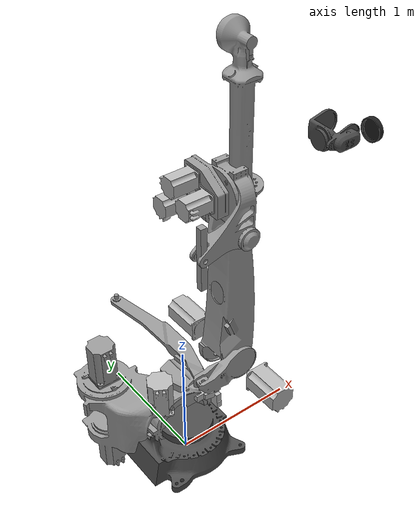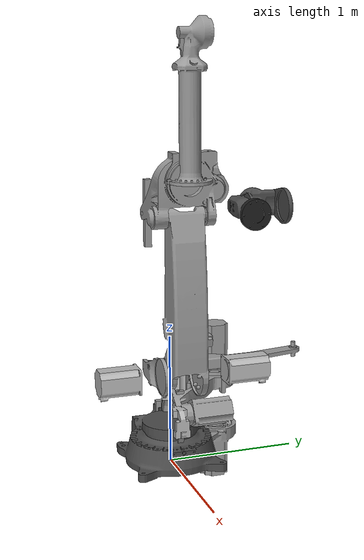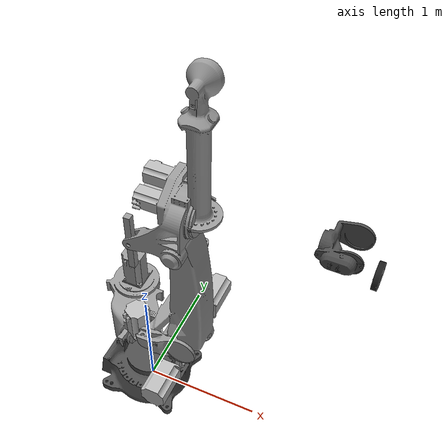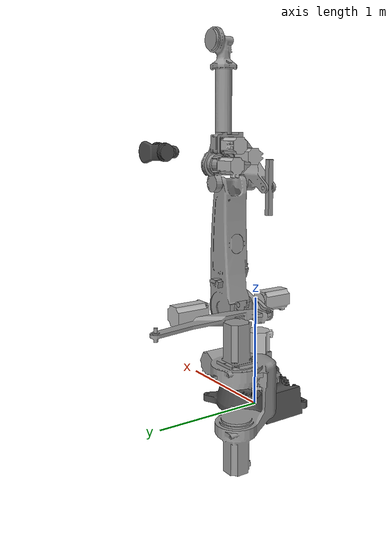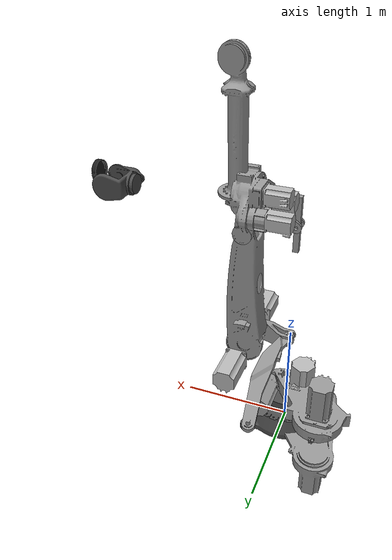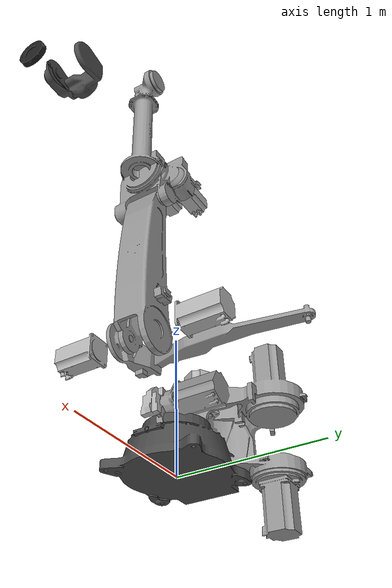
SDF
<sdf version='1.7'>
  <model name='nj_220_2_7'>
    <joint name='world_to_base_link' type='fixed'>
      <pose relative_to='__model__'>0 0 0 0 -0 0</pose>
      <parent>world</parent>
      <child>base_link</child>
    </joint>
    <link name='base_link'>
      <pose relative_to='world_to_base_link'>0 0 0 0 -0 0</pose>
      <inertial>
        <pose>0.035817 -1e-05 0.1332 0 -0 0</pose>
        <mass>780.97</mass>
        <inertia>
          <ixx>39.6457</ixx>
          <ixy>0.00269524</ixy>
          <ixz>-3.73358</ixz>
          <iyy>48.5059</iyy>
          <iyz>-0.00127807</iyz>
          <izz>49.0797</izz>
        </inertia>
      </inertial>
      <collision name='base_link_collision'>
        <pose>0 0 0 0 -0 0</pose>
        <geometry>
          <mesh>
            <scale>1 1 1</scale>
            <uri>model://nj_220_2_7_gazebo/meshes/base_link.STL</uri>
          </mesh>
        </geometry>
        <surface>
          <contact>
            <ode/>
          </contact>
          <friction>
            <ode/>
          </friction>
        </surface>
      </collision>
      <visual name='base_link_visual'>
        <pose>0 0 0 0 -0 0</pose>
        <geometry>
          <mesh>
            <scale>1 1 1</scale>
            <uri>model://nj_220_2_7_gazebo/meshes/base_link.STL</uri>
          </mesh>
        </geometry>
        <material>
          <script>
            <name>Gazebo/DarkGrey</name>
            <uri>file://media/materials/scripts/gazebo.material</uri>
          </script>
        </material>
      </visual>
      <self_collide>0</self_collide>
      <gravity>1</gravity>
    </link>
    <joint name='joint_1' type='revolute'>
      <pose relative_to='base_link'>0 0 0.331 0 -0 0</pose>
      <parent>base_link</parent>
      <child>link_1</child>
      <axis>
        <xyz>0 0 1</xyz>
        <limit>
          <lower>-1.5708</lower>
          <upper>1.5708</upper>
          <effort>100000</effort>
          <velocity>1.74533</velocity>
        </limit>
        <dynamics>
          <spring_reference>0</spring_reference>
          <spring_stiffness>0</spring_stiffness>
        </dynamics>
      </axis>
    </joint>
    <link name='link_1'>
      <pose relative_to='joint_1'>0 0 0 0 -0 0</pose>
      <inertial>
        <pose>0.25212 0.014172 0.34073 0 -0 0</pose>
        <mass>360.36</mass>
        <inertia>
          <ixx>123.042</ixx>
          <ixy>6.08766</ixy>
          <ixz>45.5816</ixz>
          <iyy>166.343</iyy>
          <iyz>6.83534</iyz>
          <izz>104.615</izz>
        </inertia>
      </inertial>
      <collision name='link_1_collision'>
        <pose>0 0 0 0 -0 0</pose>
        <geometry>
          <mesh>
            <scale>1 1 1</scale>
            <uri>model://nj_220_2_7_gazebo/meshes/link_1.STL</uri>
          </mesh>
        </geometry>
        <surface>
          <contact>
            <ode/>
          </contact>
          <friction>
            <ode/>
          </friction>
        </surface>
      </collision>
      <collision name='link_1_fixed_joint_lump__external_piece_collision_1'>
        <pose>0 0 0 0 -0 0</pose>
        <geometry>
          <mesh>
            <scale>1 1 1</scale>
            <uri>model://nj_220_2_7_gazebo/meshes/external_part.STL</uri>
          </mesh>
        </geometry>
      </collision>
      <collision name='link_1_fixed_joint_lump__motor_1_collision_2'>
        <pose>-0.1567 0.0905 0.12075 0 0 -2.08916</pose>
        <geometry>
          <mesh>
            <scale>1 1 1</scale>
            <uri>model://nj_220_2_7_gazebo/meshes/motor_80.STL</uri>
          </mesh>
        </geometry>
      </collision>
      <collision name='link_1_fixed_joint_lump__motor_2_collision_3'>
        <pose>0.4 0.2955 0.499 -1.5708 1.5708 0</pose>
        <geometry>
          <mesh>
            <scale>1 1 1</scale>
            <uri>model://nj_220_2_7_gazebo/meshes/motor_90.STL</uri>
          </mesh>
        </geometry>
      </collision>
      <collision name='link_1_fixed_joint_lump__motor_3_collision_4'>
        <pose>0.4 -0.358 0.499 1.5708 1.5708 0</pose>
        <geometry>
          <mesh>
            <scale>1 1 1</scale>
            <uri>model://nj_220_2_7_gazebo/meshes/motor_80.STL</uri>
          </mesh>
        </geometry>
      </collision>
      <visual name='link_1_visual'>
        <pose>0 0 0 0 -0 0</pose>
        <geometry>
          <mesh>
            <scale>1 1 1</scale>
            <uri>model://nj_220_2_7_gazebo/meshes/link_1.STL</uri>
          </mesh>
        </geometry>
        <material>
          <script>
            <name>Gazebo/Grey</name>
            <uri>file://media/materials/scripts/gazebo.material</uri>
          </script>
        </material>
      </visual>
      <visual name='link_1_fixed_joint_lump__external_piece_visual_1'>
        <pose>0 0 0 0 -0 0</pose>
        <geometry>
          <mesh>
            <scale>1 1 1</scale>
            <uri>model://nj_220_2_7_gazebo/meshes/external_part.STL</uri>
          </mesh>
        </geometry>
      </visual>
      <visual name='link_1_fixed_joint_lump__motor_1_visual_2'>
        <pose>-0.1567 0.0905 0.12075 0 0 -2.08916</pose>
        <geometry>
          <mesh>
            <scale>1 1 1</scale>
            <uri>model://nj_220_2_7_gazebo/meshes/motor_80.STL</uri>
          </mesh>
        </geometry>
      </visual>
      <visual name='link_1_fixed_joint_lump__motor_2_visual_3'>
        <pose>0.4 0.2955 0.499 -1.5708 1.5708 0</pose>
        <geometry>
          <mesh>
            <scale>1 1 1</scale>
            <uri>model://nj_220_2_7_gazebo/meshes/motor_90.STL</uri>
          </mesh>
        </geometry>
      </visual>
      <visual name='link_1_fixed_joint_lump__motor_3_visual_4'>
        <pose>0.4 -0.358 0.499 1.5708 1.5708 0</pose>
        <geometry>
          <mesh>
            <scale>1 1 1</scale>
            <uri>model://nj_220_2_7_gazebo/meshes/motor_80.STL</uri>
          </mesh>
        </geometry>
      </visual>
      <self_collide>0</self_collide>
      <gravity>1</gravity>
    </link>
    <joint name='joint_2' type='revolute'>
      <pose relative_to='link_1'>0.4 0 0.499 0 -0 0</pose>
      <parent>link_1</parent>
      <child>link_2</child>
      <axis>
        <xyz>0 1 0</xyz>
        <limit>
          <lower>-1.309</lower>
          <upper>1.65806</upper>
          <effort>100000</effort>
          <velocity>1.5708</velocity>
        </limit>
        <dynamics>
          <spring_reference>0</spring_reference>
          <spring_stiffness>0</spring_stiffness>
        </dynamics>
      </axis>
    </joint>
    <link name='link_2'>
      <pose relative_to='joint_2'>0 0 0 0 -0 0</pose>
      <inertial>
        <pose>0.018416 -0.00326 0.51384 0 -0 0</pose>
        <mass>120.34</mass>
        <inertia>
          <ixx>53.7364</ixx>
          <ixy>-0.00887173</ixy>
          <ixz>1.24712</ixz>
          <iyy>53.4871</iyy>
          <iyz>-0.667936</iyz>
          <izz>2.25972</izz>
        </inertia>
      </inertial>
      <collision name='link_2_collision'>
        <pose>0 0 0 0 -0 0</pose>
        <geometry>
          <mesh>
            <scale>1 1 1</scale>
            <uri>model://nj_220_2_7_gazebo/meshes/link_2.STL</uri>
          </mesh>
        </geometry>
        <surface>
          <contact>
            <ode/>
          </contact>
          <friction>
            <ode/>
          </friction>
        </surface>
      </collision>
      <visual name='link_2_visual'>
        <pose>0 0 0 0 -0 0</pose>
        <geometry>
          <mesh>
            <scale>1 1 1</scale>
            <uri>model://nj_220_2_7_gazebo/meshes/link_2.STL</uri>
          </mesh>
        </geometry>
        <material>
          <script>
            <name>Gazebo/Grey</name>
            <uri>file://media/materials/scripts/gazebo.material</uri>
          </script>
        </material>
      </visual>
      <self_collide>0</self_collide>
      <gravity>1</gravity>
    </link>
    <joint name='joint_2m' type='revolute'>
      <pose relative_to='link_2'>0 0 1.175 0 -0 0</pose>
      <parent>link_2</parent>
      <child>link_3_virtual</child>
      <axis>
        <xyz>0 1 0</xyz>
        <limit>
          <lower>-6.28319</lower>
          <upper>6.28319</upper>
          <effort>100000</effort>
          <velocity>3.40339</velocity>
        </limit>
        <dynamics>
          <spring_reference>0</spring_reference>
          <spring_stiffness>0</spring_stiffness>
        </dynamics>
      </axis>
    </joint>
    <link name='link_3_virtual'>
      <pose relative_to='joint_2m'>0 0 0 0 -0 0</pose>
      <inertial>
        <pose>0 0 0 0 -0 0</pose>
        <mass>0.01</mass>
        <inertia>
          <ixx>1e-05</ixx>
          <ixy>0</ixy>
          <ixz>0</ixz>
          <iyy>1e-05</iyy>
          <iyz>0</iyz>
          <izz>0</izz>
        </inertia>
      </inertial>
      <self_collide>0</self_collide>
      <gravity>1</gravity>
    </link>
    <joint name='joint_3m' type='revolute'>
      <pose relative_to='link_3_virtual'>0 0 0 0 -0 0</pose>
      <parent>link_3_virtual</parent>
      <child>link_3</child>
      <axis>
        <xyz>0 1 0</xyz>
        <limit>
          <lower>-6.28319</lower>
          <upper>6.28319</upper>
          <effort>0</effort>
          <velocity>0</velocity>
        </limit>
        <dynamics>
          <spring_reference>0</spring_reference>
          <spring_stiffness>0</spring_stiffness>
        </dynamics>
      </axis>
    </joint>
    <link name='link_3'>
      <pose relative_to='joint_3m'>0 0 0 0 -0 0</pose>
      <inertial>
        <pose>-0.053381 0.041581 0.220387 0 -0 0</pose>
        <mass>387.81</mass>
        <inertia>
          <ixx>26.6208</ixx>
          <ixy>-0.157573</ixy>
          <ixz>-2.39231</ixz>
          <iyy>22.4795</iyy>
          <iyz>2.19076</iyz>
          <izz>11.5928</izz>
        </inertia>
      </inertial>
      <collision name='link_3_collision'>
        <pose>0 0 0 0 -0 0</pose>
        <geometry>
          <mesh>
            <scale>1 1 1</scale>
            <uri>model://nj_220_2_7_gazebo/meshes/link_3.STL</uri>
          </mesh>
        </geometry>
        <surface>
          <contact>
            <ode/>
          </contact>
          <friction>
            <ode/>
          </friction>
        </surface>
      </collision>
      <collision name='link_3_fixed_joint_lump__motor_4_collision_1'>
        <pose>-0.2 0.21052 0.175 -3.14159 1.5708 0</pose>
        <geometry>
          <mesh>
            <scale>1 1 1</scale>
            <uri>model://nj_220_2_7_gazebo/meshes/motor_50.STL</uri>
          </mesh>
        </geometry>
      </collision>
      <collision name='link_3_fixed_joint_lump__motor_5_collision_2'>
        <pose>-0.1675 0 0.25 1.5708 0 -1.5708</pose>
        <geometry>
          <mesh>
            <scale>1 1 1</scale>
            <uri>model://nj_220_2_7_gazebo/meshes/motor_50.STL</uri>
          </mesh>
        </geometry>
      </collision>
      <collision name='link_3_fixed_joint_lump__motor_6_collision_3'>
        <pose>-0.1675 0.155 0.34577 -1.5708 0 1.5708</pose>
        <geometry>
          <mesh>
            <scale>1 1 1</scale>
            <uri>model://nj_220_2_7_gazebo/meshes/motor_50.STL</uri>
          </mesh>
        </geometry>
      </collision>
      <visual name='link_3_visual'>
        <pose>0 0 0 0 -0 0</pose>
        <geometry>
          <mesh>
            <scale>1 1 1</scale>
            <uri>model://nj_220_2_7_gazebo/meshes/link_3.STL</uri>
          </mesh>
        </geometry>
        <material>
          <script>
            <name>Gazebo/Grey</name>
            <uri>file://media/materials/scripts/gazebo.material</uri>
          </script>
        </material>
      </visual>
      <visual name='link_3_fixed_joint_lump__motor_4_visual_1'>
        <pose>-0.2 0.21052 0.175 -3.14159 1.5708 0</pose>
        <geometry>
          <mesh>
            <scale>1 1 1</scale>
            <uri>model://nj_220_2_7_gazebo/meshes/motor_50.STL</uri>
          </mesh>
        </geometry>
      </visual>
      <visual name='link_3_fixed_joint_lump__motor_5_visual_2'>
        <pose>-0.1675 0 0.25 1.5708 0 -1.5708</pose>
        <geometry>
          <mesh>
            <scale>1 1 1</scale>
            <uri>model://nj_220_2_7_gazebo/meshes/motor_50.STL</uri>
          </mesh>
        </geometry>
      </visual>
      <visual name='link_3_fixed_joint_lump__motor_6_visual_3'>
        <pose>-0.1675 0.155 0.34577 -1.5708 0 1.5708</pose>
        <geometry>
          <mesh>
            <scale>1 1 1</scale>
            <uri>model://nj_220_2_7_gazebo/meshes/motor_50.STL</uri>
          </mesh>
        </geometry>
      </visual>
      <self_collide>0</self_collide>
      <gravity>1</gravity>
    </link>
    <joint name='joint_4' type='revolute'>
      <pose relative_to='link_3'>0.105 0 0.25 0 -0 0</pose>
      <parent>link_3</parent>
      <child>link_4</child>
      <axis>
        <xyz>1 0 0</xyz>
        <limit>
          <lower>-6.28319</lower>
          <upper>6.28319</upper>
          <effort>1230</effort>
          <velocity>2.26893</velocity>
        </limit>
        <dynamics>
          <spring_reference>0</spring_reference>
          <spring_stiffness>0</spring_stiffness>
        </dynamics>
      </axis>
    </joint>
    <link name='link_4'>
      <pose relative_to='joint_4'>0 0 0 0 -0 0</pose>
      <inertial>
        <pose>0.71228 -0.02567 -3e-05 0 -0 0</pose>
        <mass>90.963</mass>
        <inertia>
          <ixx>0.689292</ixx>
          <ixy>-2.39235</ixy>
          <ixz>-0.0019259</ixz>
          <iyy>58.1199</iyy>
          <iyz>-0.00017654</iyz>
          <izz>58.2982</izz>
        </inertia>
      </inertial>
      <collision name='link_4_collision'>
        <pose>0 0 0 0 -0 0</pose>
        <geometry>
          <mesh>
            <scale>1 1 1</scale>
            <uri>model://nj_220_2_7_gazebo/meshes/link_4.STL</uri>
          </mesh>
        </geometry>
        <surface>
          <contact>
            <ode/>
          </contact>
          <friction>
            <ode/>
          </friction>
        </surface>
      </collision>
      <visual name='link_4_visual'>
        <pose>0 0 0 0 -0 0</pose>
        <geometry>
          <mesh>
            <scale>1 1 1</scale>
            <uri>model://nj_220_2_7_gazebo/meshes/link_4.STL</uri>
          </mesh>
        </geometry>
        <material>
          <script>
            <name>Gazebo/Grey</name>
            <uri>file://media/materials/scripts/gazebo.material</uri>
          </script>
        </material>
      </visual>
      <self_collide>0</self_collide>
      <gravity>1</gravity>
    </link>
    <joint name='joint_5' type='revolute'>
      <pose relative_to='link_4'>1.02033 0 0 0 -0 0</pose>
      <parent>link_4</parent>
      <child>link_5</child>
      <axis>
        <xyz>0 1 0</xyz>
        <limit>
          <lower>-2.1816</lower>
          <upper>2.1816</upper>
          <effort>1230</effort>
          <velocity>2.26893</velocity>
        </limit>
        <dynamics>
          <spring_reference>0</spring_reference>
          <spring_stiffness>0</spring_stiffness>
        </dynamics>
      </axis>
    </joint>
    <link name='link_5'>
      <pose relative_to='joint_5'>0 0 0 0 -0 0</pose>
      <inertial>
        <pose>0.09375 0.01506 2e-05 0 -0 0</pose>
        <mass>50.615</mass>
        <inertia>
          <ixx>0.679744</ixx>
          <ixy>0.0450897</ixy>
          <ixz>9.98e-05</ixz>
          <iyy>0.8323</iyy>
          <iyz>0.00011851</iyz>
          <izz>1.32231</izz>
        </inertia>
      </inertial>
      <collision name='link_5_collision'>
        <pose>0 0 0 0 -0 0</pose>
        <geometry>
          <mesh>
            <scale>1 1 1</scale>
            <uri>model://nj_220_2_7_gazebo/meshes/link_5.STL</uri>
          </mesh>
        </geometry>
        <surface>
          <contact>
            <ode/>
          </contact>
          <friction>
            <ode/>
          </friction>
        </surface>
      </collision>
      <visual name='link_5_visual'>
        <pose>0 0 0 0 -0 0</pose>
        <geometry>
          <mesh>
            <scale>1 1 1</scale>
            <uri>model://nj_220_2_7_gazebo/meshes/link_5.STL</uri>
          </mesh>
        </geometry>
        <material>
          <script>
            <name>Gazebo/DarkGrey</name>
            <uri>file://media/materials/scripts/gazebo.material</uri>
          </script>
        </material>
      </visual>
      <self_collide>0</self_collide>
      <gravity>1</gravity>
    </link>
    <joint name='joint_6' type='revolute'>
      <pose relative_to='link_5'>0.2085 0 0 0 -0 0</pose>
      <parent>link_5</parent>
      <child>link_6</child>
      <axis>
        <xyz>1 0 0</xyz>
        <limit>
          <lower>-6.28319</lower>
          <upper>6.28319</upper>
          <effort>712</effort>
          <velocity>3.40339</velocity>
        </limit>
        <dynamics>
          <spring_reference>0</spring_reference>
          <spring_stiffness>0</spring_stiffness>
        </dynamics>
      </axis>
    </joint>
    <link name='link_6'>
      <pose relative_to='joint_6'>0 0 0 0 -0 0</pose>
      <inertial>
        <pose>0.005859 -0.00061 -6e-05 0 -0 0</pose>
        <mass>5.3437</mass>
        <inertia>
          <ixx>0.029136</ixx>
          <ixy>-8.22e-06</ixy>
          <ixz>-8.6e-07</ixz>
          <iyy>0.01533</iyy>
          <iyz>5.85e-06</iyz>
          <izz>0.0151887</izz>
        </inertia>
      </inertial>
      <collision name='link_6_collision'>
        <pose>0 0 0 0 -0 0</pose>
        <geometry>
          <mesh>
            <scale>1 1 1</scale>
            <uri>model://nj_220_2_7_gazebo/meshes/link_6.STL</uri>
          </mesh>
        </geometry>
        <surface>
          <contact>
            <ode/>
          </contact>
          <friction>
            <ode/>
          </friction>
        </surface>
      </collision>
      <visual name='link_6_visual'>
        <pose>0 0 0 0 -0 0</pose>
        <geometry>
          <mesh>
            <scale>1 1 1</scale>
            <uri>model://nj_220_2_7_gazebo/meshes/link_6.STL</uri>
          </mesh>
        </geometry>
        <material>
          <script>
            <name>Gazebo/Black</name>
            <uri>file://media/materials/scripts/gazebo.material</uri>
          </script>
        </material>
      </visual>
      <self_collide>0</self_collide>
      <gravity>1</gravity>
    </link>
    <joint name='link_6_to_flange' type='fixed'>
      <pose relative_to='link_6'>0 0 -0.0395 0 -0 0</pose>
      <parent>link_6</parent>
      <child>flange</child>
      <axis>
        <dynamics>
          <spring_reference>0</spring_reference>
          <spring_stiffness>0</spring_stiffness>
        </dynamics>
        <xyz>0 0 1</xyz>
        <limit>
          <lower>-1e+16</lower>
          <upper>1e+16</upper>
        </limit>
      </axis>
      <physics>
        <provide_feedback>1</provide_feedback>
        <ode>
          <limit>
            <cfm>0</cfm>
            <erp>0.2</erp>
          </limit>
          <provide_feedback>1</provide_feedback>
        </ode>
      </physics>
    </joint>
    <link name='flange'>
      <pose relative_to='link_6_to_flange'>0 0 0 0 -0 0</pose>
      <inertial>
        <pose>0 0 0 0 -0 0</pose>
        <mass>0.01</mass>
        <inertia>
          <ixx>1e-05</ixx>
          <ixy>0</ixy>
          <ixz>0</ixz>
          <iyy>1e-05</iyy>
          <iyz>0</iyz>
          <izz>0</izz>
        </inertia>
      </inertial>
    </link>
    <joint name='joint_3' type='revolute'>
      <pose relative_to='link_1'>0.4 -0.1945 0.499 1.5708 0.087266 -3.14159</pose>
      <parent>link_1</parent>
      <child>link_2_1</child>
      <axis>
        <xyz>0 0 -1</xyz>
        <limit>
          <lower>-4.46804</lower>
          <upper>0.174533</upper>
          <effort>100000</effort>
          <velocity>1.91986</velocity>
        </limit>
        <dynamics>
          <spring_reference>0</spring_reference>
          <spring_stiffness>0</spring_stiffness>
        </dynamics>
      </axis>
    </joint>
    <link name='link_2_1'>
      <pose relative_to='joint_3'>0 0 0 0 -0 0</pose>
      <inertial>
        <pose>0.14943 -0.006379 0.023924 0 -0 0</pose>
        <mass>41.905</mass>
        <inertia>
          <ixx>0.185206</ixx>
          <ixy>-0.0706405</ixy>
          <ixz>0.172186</ixz>
          <iyy>1.70899</iyy>
          <iyz>-0.00657138</iyz>
          <izz>1.77578</izz>
        </inertia>
      </inertial>
      <collision name='link_2_1_collision'>
        <pose>0 0 0 0 -0 0</pose>
        <geometry>
          <mesh>
            <scale>1 1 1</scale>
            <uri>model://nj_220_2_7_gazebo/meshes/link_2_1.STL</uri>
          </mesh>
        </geometry>
        <surface>
          <contact>
            <ode/>
          </contact>
          <friction>
            <ode/>
          </friction>
        </surface>
      </collision>
      <visual name='link_2_1_visual'>
        <pose>0 0 0 0 -0 0</pose>
        <geometry>
          <mesh>
            <scale>1 1 1</scale>
            <uri>model://nj_220_2_7_gazebo/meshes/link_2_1.STL</uri>
          </mesh>
        </geometry>
        <material>
          <script>
            <name>Gazebo/Grey</name>
            <uri>file://media/materials/scripts/gazebo.material</uri>
          </script>
        </material>
      </visual>
      <self_collide>0</self_collide>
      <gravity>1</gravity>
    </link>
    <joint name='joint_2_1' type='revolute'>
      <pose relative_to='link_2_1'>0.35 0 0.015 0 -0 0.087266</pose>
      <parent>link_2_1</parent>
      <child>link_2_2_virtual</child>
      <axis>
        <xyz>0 0 1</xyz>
        <limit>
          <lower>-1e+16</lower>
          <upper>1e+16</upper>
        </limit>
        <dynamics>
          <spring_reference>0</spring_reference>
          <spring_stiffness>0</spring_stiffness>
        </dynamics>
      </axis>
    </joint>
    <link name='link_2_2_virtual'>
      <pose relative_to='joint_2_1'>0 0 0 0 -0 0</pose>
      <inertial>
        <pose>0 0 0 0 -0 0</pose>
        <mass>0.01</mass>
        <inertia>
          <ixx>1e-05</ixx>
          <ixy>0</ixy>
          <ixz>0</ixz>
          <iyy>1e-05</iyy>
          <iyz>0</iyz>
          <izz>0</izz>
        </inertia>
      </inertial>
    </link>
    <joint name='joint_2_2' type='revolute'>
      <pose relative_to='link_2_2_virtual'>0 0 0 0 -0 0</pose>
      <parent>link_2_2_virtual</parent>
      <child>link_2_2</child>
      <axis>
        <xyz>0 0 1</xyz>
        <limit>
          <lower>-1e+16</lower>
          <upper>1e+16</upper>
        </limit>
        <dynamics>
          <spring_reference>0</spring_reference>
          <spring_stiffness>0</spring_stiffness>
        </dynamics>
      </axis>
    </joint>
    <link name='link_2_2'>
      <pose relative_to='joint_2_2'>0 0 0 0 -0 0</pose>
      <inertial>
        <pose>0.06443 0.51885 0.01485 0 -0 0</pose>
        <mass>60.72</mass>
        <inertia>
          <ixx>21.9394</ixx>
          <ixy>1.8919</ixy>
          <ixz>0.0573372</ixz>
          <iyy>0.410289</iyy>
          <iyz>0.470647</iyz>
          <izz>22.2704</izz>
        </inertia>
      </inertial>
      <collision name='link_2_2_collision'>
        <pose>0 0 0 0 -0 0</pose>
        <geometry>
          <mesh>
            <scale>1 1 1</scale>
            <uri>model://nj_220_2_7_gazebo/meshes/link_2_2.STL</uri>
          </mesh>
        </geometry>
        <surface>
          <contact>
            <ode/>
          </contact>
          <friction>
            <ode/>
          </friction>
        </surface>
      </collision>
      <visual name='link_2_2_visual'>
        <pose>0 0 0 0 -0 0</pose>
        <geometry>
          <mesh>
            <scale>1 1 1</scale>
            <uri>model://nj_220_2_7_gazebo/meshes/link_2_2.STL</uri>
          </mesh>
        </geometry>
        <material>
          <script>
            <name>Gazebo/Grey</name>
            <uri>file://media/materials/scripts/gazebo.material</uri>
          </script>
        </material>
      </visual>
      <self_collide>0</self_collide>
      <gravity>1</gravity>
    </link>
    <joint name='joint_2_3' type='revolute'>
      <pose relative_to='link_2_2'>0 1.175 0 1.5708 -0 -3.14159</pose>
      <parent>link_2_2</parent>
      <child>link_2_3</child>
      <axis>
        <xyz>0 0 1</xyz>
        <limit>
          <lower>-6.28319</lower>
          <upper>6.28319</upper>
          <effort>712</effort>
          <velocity>3.40339</velocity>
        </limit>
        <dynamics>
          <spring_reference>0</spring_reference>
          <spring_stiffness>0</spring_stiffness>
        </dynamics>
      </axis>
    </joint>
    <link name='link_2_3'>
      <pose relative_to='joint_2_3'>0 0 0 0 -0 0</pose>
      <inertial>
        <pose>0 0 0 0 -0 0</pose>
        <mass>0.01</mass>
        <inertia>
          <ixx>1e-05</ixx>
          <ixy>0</ixy>
          <ixz>0</ixz>
          <iyy>1e-05</iyy>
          <iyz>0</iyz>
          <izz>0</izz>
        </inertia>
      </inertial>
      <visual name='link_2_3_visual'>
        <pose>0 0 0 0 -0 0</pose>
        <geometry>
          <box>
            <size>0.05 0.05 0.5</size>
          </box>
        </geometry>
        <material>
          <script>
            <name>Gazebo/Grey</name>
            <uri>file://media/materials/scripts/gazebo.material</uri>
          </script>
        </material>
      </visual>
      <self_collide>0</self_collide>
      <gravity>1</gravity>
    </link>
    <joint name='closing_joint' type='revolute'>
      <parent>link_3</parent>
      <child>link_2_3</child>
      <pose relative_to='link_3'>0 0 0 0 -0 0</pose>
      <axis>
        <xyz>0 1 0</xyz>
        <limit>
          <lower>-1e+16</lower>
          <upper>1e+16</upper>
        </limit>
      </axis>
    </joint>
    <plugin name='gazebo_ros_control' filename='libgazebo_ros_control.so'>
      <robotNamespace>/nj_220_2_7</robotNamespace>
      <robotSimType>gazebo_ros_control/DefaultRobotHWSim</robotSimType>
    </plugin>
    <plugin name='ft_sensor' filename='libgazebo_ros_ft_sensor.so'>
      <updateRate>1000.0</updateRate>
      <topicName>gripper/wrench</topicName>
      <jointName>link_6_to_flange</jointName>
    </plugin>
    <frame name='joint_external_piece' attached_to='link_1'>
      <pose>0 0 0 0 -0 0</pose>
    </frame>
    <frame name='external_piece' attached_to='joint_external_piece'/>
    <frame name='joint_motor_1' attached_to='link_1'>
      <pose>-0.1567 0.0905 0.12075 0 -0 -2.08916</pose>
    </frame>
    <frame name='motor_1' attached_to='joint_motor_1'/>
    <frame name='joint_motor_2' attached_to='link_1'>
      <pose>0.4 0.2955 0.499 1.57079 1.57079 3.14159</pose>
    </frame>
    <frame name='motor_2' attached_to='joint_motor_2'/>
    <frame name='joint_motor_3' attached_to='link_1'>
      <pose>0.4 -0.358 0.499 -1.57079 1.57079 3.14159</pose>
    </frame>
    <frame name='motor_3' attached_to='joint_motor_3'/>
    <frame name='joint_motor_4' attached_to='link_3'>
      <pose>-0.2 0.21052 0.175 3e-06 1.57079 3.14159</pose>
    </frame>
    <frame name='motor_4' attached_to='joint_motor_4'/>
    <frame name='joint_motor_5' attached_to='link_3'>
      <pose>-0.1675 0 0.25 1.5708 0 -1.5708</pose>
    </frame>
    <frame name='motor_5' attached_to='joint_motor_5'/>
    <static>0</static>
    <frame name='joint_motor_6' attached_to='link_3'>
      <pose>-0.1675 0.155 0.34577 -1.5708 0 1.5708</pose>
    </frame>
    <frame name='motor_6' attached_to='joint_motor_6'/>
  </model>
</sdf>
